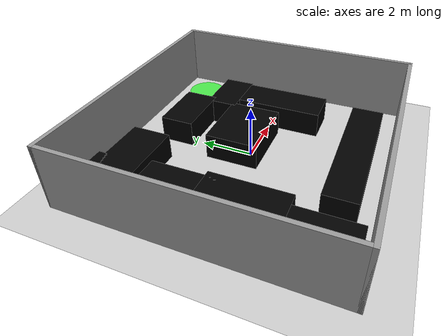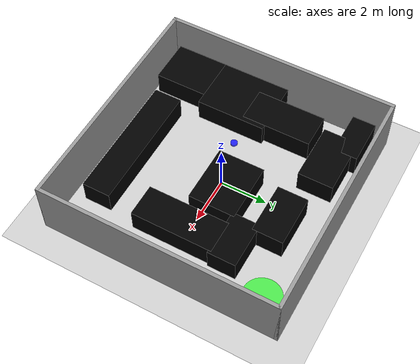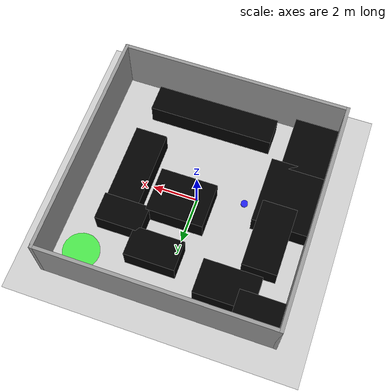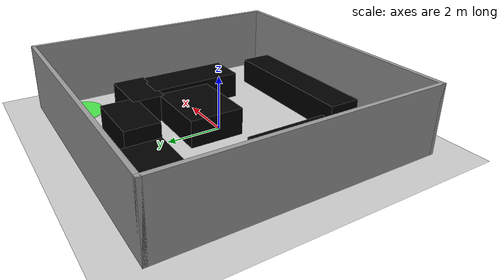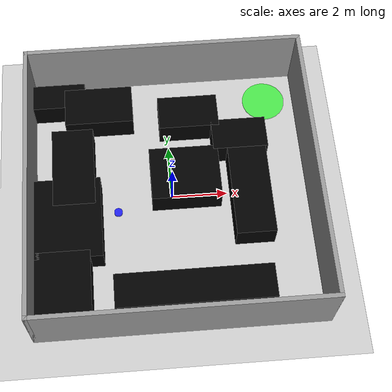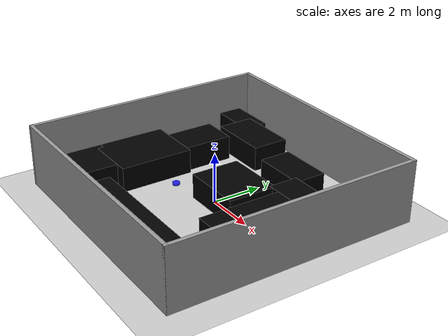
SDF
<?xml version="1.0" ?>
<sdf version="1.6">
  <world name="env_40pct_right_route">
    <gravity>0 0 -9.8</gravity>

    <!-- Lighting & Ground -->
    <include><uri>model://sun</uri></include>
    <include><uri>model://ground_plane</uri></include>

    <!-- Walls -->
    <model name="walls">
      <static>true</static>
      <link name="link">
        <!-- Bottom -->
        <collision name="bottom_collision"><geometry><box><size>10.15 0.15 2.5</size></box></geometry><pose>0 -5 1.25 0 0 0</pose></collision>
        <visual name="bottom_visual"><geometry><box><size>10.15 0.15 2.5</size></box></geometry><pose>0 -5 1.25 0 0 0</pose><material><ambient>0.6 0.6 0.6 1</ambient></material></visual>
        <!-- Top -->
        <collision name="top_collision"><geometry><box><size>10.15 0.15 2.5</size></box></geometry><pose>0 5 1.25 0 0 0</pose></collision>
        <visual name="top_visual"><geometry><box><size>10.15 0.15 2.5</size></box></geometry><pose>0 5 1.25 0 0 0</pose><material><ambient>0.6 0.6 0.6 1</ambient></material></visual>
        <!-- Left -->
        <collision name="left_collision"><geometry><box><size>0.15 10.15 2.5</size></box></geometry><pose>-5 0 1.25 0 0 0</pose></collision>
        <visual name="left_visual"><geometry><box><size>0.15 10.15 2.5</size></box></geometry><pose>-5 0 1.25 0 0 0</pose><material><ambient>0.6 0.6 0.6 1</ambient></material></visual>
        <!-- Right -->
        <collision name="right_collision"><geometry><box><size>0.15 10.15 2.5</size></box></geometry><pose>5 0 1.25 0 0 0</pose></collision>
        <visual name="right_visual"><geometry><box><size>0.15 10.15 2.5</size></box></geometry><pose>5 0 1.25 0 0 0</pose><material><ambient>0.6 0.6 0.6 1</ambient></material></visual>
      </link>
    </model>

    <!-- Start -->
    <model name="start_marker">
      <static>true</static>
      <pose>-1.99 -0.5 0.05 0 0 0</pose>
      <link name="link">
        <visual name="visual"><geometry><cylinder><radius>0.15</radius><length>0.1</length></cylinder></geometry><material><ambient>0 0 1 0.8</ambient></material></visual>
      </link>
    </model>

    <!-- Goal -->
    <model name="goal_region">
      <static>true</static>
      <pose>3.8 3.8 0.05 0 0 0</pose>
      <link name="link">
        <visual name="visual"><geometry><cylinder><radius>0.8</radius><length>0.05</length></cylinder></geometry><material><ambient>0 1 0 0.6</ambient></material></visual>
      </link>
    </model>

    <!-- 10 Obstacles (~40% coverage) -->
    <!-- Black, solid, rectangular boxes, force route to go right -->

    <!-- Block left side near start -->
    <model name="obs0"><static>true</static><pose>-3.8 -1.0 0.5 0 0 0</pose>
      <link name="link">
        <collision name="collision"><geometry><box><size>2.5 3.0 1.0</size></box></geometry></collision>
        <visual name="visual"><geometry><box><size>2.5 3.0 1.0</size></box></geometry><material><ambient>0 0 0 1</ambient></material></visual>
      </link>
    </model>

    <!-- Lower-left cluster closing left route -->
    <model name="obs1"><static>true</static><pose>-4.0 -3.5 0.5 0 0 0</pose>
      <link name="link">
        <collision name="collision"><geometry><box><size>2.0 2.5 1.0</size></box></geometry></collision>
        <visual name="visual"><geometry><box><size>2.0 2.5 1.0</size></box></geometry><material><ambient>0 0 0 1</ambient></material></visual>
      </link>
    </model>

    <!-- Lower-mid barrier with rightward gap -->
    <model name="obs2"><static>true</static><pose>0.5 -3.8 0.5 0 0 0</pose>
      <link name="link">
        <collision name="collision"><geometry><box><size>5.5 1.2 1.0</size></box></geometry></collision>
        <visual name="visual"><geometry><box><size>5.5 1.2 1.0</size></box></geometry><material><ambient>0 0 0 1</ambient></material></visual>
      </link>
    </model>

    <!-- Left mid wall that funnels robot right -->
    <model name="obs3"><static>true</static><pose>-3.5 1.0 0.5 0 0 0</pose>
      <link name="link">
        <collision name="collision"><geometry><box><size>1.5 3.0 1.0</size></box></geometry></collision>
        <visual name="visual"><geometry><box><size>1.5 3.0 1.0</size></box></geometry><material><ambient>0 0 0 1</ambient></material></visual>
      </link>
    </model>

    <!-- Central obstacle to split path -->
    <model name="obs4"><static>true</static><pose>0.5 0.5 0.5 0 0 0</pose>
      <link name="link">
        <collision name="collision"><geometry><box><size>2.5 2.0 1.0</size></box></geometry></collision>
        <visual name="visual"><geometry><box><size>2.5 2.0 1.0</size></box></geometry><material><ambient>0 0 0 1</ambient></material></visual>
      </link>
    </model>

    <!-- Mid-right vertical wall -->
    <model name="obs5"><static>true</static><pose>2.8 -0.28 0.5 0 0 0</pose>
      <link name="link">
        <collision name="collision"><geometry><box><size>1.4 3.5 1.0</size></box></geometry></collision>
        <visual name="visual"><geometry><box><size>1.4 3.5 1.0</size></box></geometry><material><ambient>0 0 0 1</ambient></material></visual>
      </link>
    </model>

    <!-- Upper-left barrier preventing shortcut -->
    <model name="obs6"><static>true</static><pose>-2.5 3.5 0.5 0 0 0</pose>
      <link name="link">
        <collision name="collision"><geometry><box><size>2.5 1.5 1.0</size></box></geometry></collision>
        <visual name="visual"><geometry><box><size>2.5 1.5 1.0</size></box></geometry><material><ambient>0 0 0 1</ambient></material></visual>
      </link>
    </model>

    <!-- Upper-center obstacle creating S-turn -->
    <model name="obs7"><static>true</static><pose>0.8 3.0 0.5 0 0 0</pose>
      <link name="link">
        <collision name="collision"><geometry><box><size>2.2 1.3 1.0</size></box></geometry></collision>
        <visual name="visual"><geometry><box><size>2.2 1.3 1.0</size></box></geometry><material><ambient>0 0 0 1</ambient></material></visual>
      </link>
    </model>

    <!-- Top-right pre-goal obstacle -->
    <model name="obs8"><static>true</static><pose>2.6 1.95 0.5 0 0 0</pose>
      <link name="link">
        <collision name="collision"><geometry><box><size>2.0 1.2 1.0</size></box></geometry></collision>
        <visual name="visual"><geometry><box><size>2.0 1.2 1.0</size></box></geometry><material><ambient>0 0 0 1</ambient></material></visual>
      </link>
    </model>

    <!-- Top-left filler for balance -->
    <model name="obs9"><static>true</static><pose>-4.0 4.0 0.5 0 0 0</pose>
      <link name="link">
        <collision name="collision"><geometry><box><size>2.0 1.0 1.0</size></box></geometry></collision>
        <visual name="visual"><geometry><box><size>2.0 1.0 1.0</size></box></geometry><material><ambient>0 0 0 1</ambient></material></visual>
      </link>
    </model>

  </world>
</sdf>
